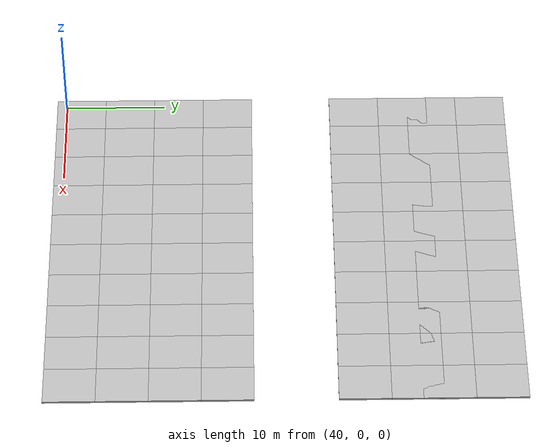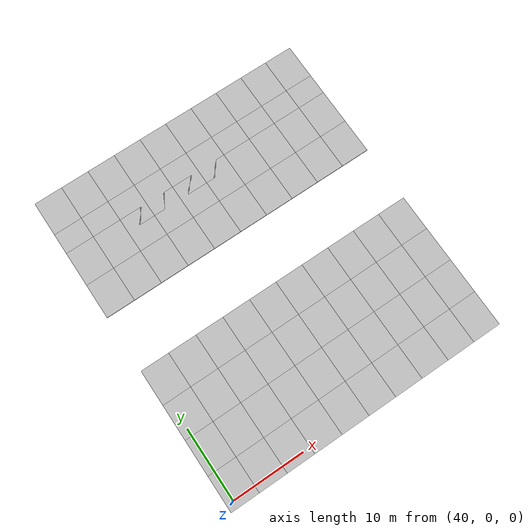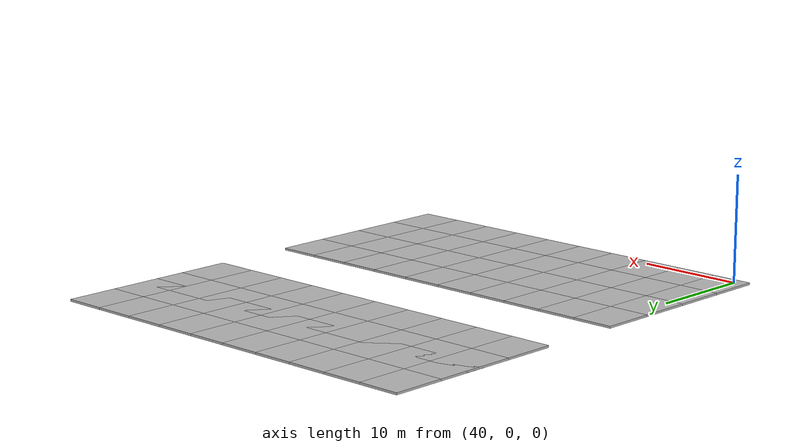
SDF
<sdf version="1.7">
 <world name="default">
  <model name="mud_layer_15">
   <static>1</static>
   <link name="link">
    <collision name="collision"><geometry><box><size>8 10 0.2</size></box></geometry></collision>
    <visual name="visual_1">
     <pose>-2 2.5 0 0 -0 0</pose>
     <cast_shadows>0</cast_shadows>
     <geometry><box><size>4 5 0.2</size></box></geometry>
     <material>
      <script>
       <uri>model://mud_box/materials/scripts</uri>
       <uri>model://mud_box/materials/textures</uri>
       <name>vrc/mud</name>
      </script>
     </material>
    </visual>
    <visual name="visual_2">
     <pose>2 2.5 0 0 -0 0</pose>
     <cast_shadows>0</cast_shadows>
     <geometry><box><size>4 5 0.2</size></box></geometry>
     <material>
      <script>
       <uri>model://mud_box/materials/scripts</uri>
       <uri>model://mud_box/materials/textures</uri>
       <name>vrc/mud</name>
      </script>
     </material>
    </visual>
    <visual name="visual_3">
     <pose>2 -2.5 0 0 -0 0</pose>
     <cast_shadows>0</cast_shadows>
     <geometry><box><size>4 5 0.2</size></box></geometry>
     <material>
      <script>
       <uri>model://mud_box/materials/scripts</uri>
       <uri>model://mud_box/materials/textures</uri>
       <name>vrc/mud</name>
      </script>
     </material>
    </visual>
    <visual name="visual_4">
     <pose>-2 -2.5 0 0 -0 0</pose>
     <cast_shadows>0</cast_shadows>
     <geometry><box><size>4 5 0.2</size></box></geometry>
     <material>
      <script>
       <uri>model://mud_box/materials/scripts</uri>
       <uri>model://mud_box/materials/textures</uri>
       <name>vrc/mud</name>
      </script>
     </material>
    </visual>
   </link>
   <pose>43 4 -0.1 0 -0 0</pose>
  </model>
  <model name="mud_layer_16">
   <static>1</static>
   <link name="link">
    <collision name="collision"><geometry><box><size>8 10 0.2</size></box></geometry></collision>
    <visual name="visual_1">
     <pose>-2 2.5 0 0 -0 0</pose>
     <cast_shadows>0</cast_shadows>
     <geometry><box><size>4 5 0.2</size></box></geometry>
     <material>
      <script>
       <uri>model://mud_box/materials/scripts</uri>
       <uri>model://mud_box/materials/textures</uri>
       <name>vrc/mud</name>
      </script>
     </material>
    </visual>
    <visual name="visual_2">
     <pose>2 2.5 0 0 -0 0</pose>
     <cast_shadows>0</cast_shadows>
     <geometry><box><size>4 5 0.2</size></box></geometry>
     <material>
      <script>
       <uri>model://mud_box/materials/scripts</uri>
       <uri>model://mud_box/materials/textures</uri>
       <name>vrc/mud</name>
      </script>
     </material>
    </visual>
    <visual name="visual_3">
     <pose>2 -2.5 0 0 -0 0</pose>
     <cast_shadows>0</cast_shadows>
     <geometry><box><size>4 5 0.2</size></box></geometry>
     <material>
      <script>
       <uri>model://mud_box/materials/scripts</uri>
       <uri>model://mud_box/materials/textures</uri>
       <name>vrc/mud</name>
      </script>
     </material>
    </visual>
    <visual name="visual_4">
     <pose>-2 -2.5 0 0 -0 0</pose>
     <cast_shadows>0</cast_shadows>
     <geometry><box><size>4 5 0.2</size></box></geometry>
     <material>
      <script>
       <uri>model://mud_box/materials/scripts</uri>
       <uri>model://mud_box/materials/textures</uri>
       <name>vrc/mud</name>
      </script>
     </material>
    </visual>
   </link>
   <pose>51 4 -0.1 0 -0 0</pose>
  </model>
  <model name="mud_layer_17">
   <static>1</static>
   <link name="link">
    <collision name="collision"><geometry><box><size>8 10 0.2</size></box></geometry></collision>
    <visual name="visual_1">
     <pose>-2 2.5 0 0 -0 0</pose>
     <cast_shadows>0</cast_shadows>
     <geometry><box><size>4 5 0.2</size></box></geometry>
     <material>
      <script>
       <uri>model://mud_box/materials/scripts</uri>
       <uri>model://mud_box/materials/textures</uri>
       <name>vrc/mud</name>
      </script>
     </material>
    </visual>
    <visual name="visual_2">
     <pose>2 2.5 0 0 -0 0</pose>
     <cast_shadows>0</cast_shadows>
     <geometry><box><size>4 5 0.2</size></box></geometry>
     <material>
      <script>
       <uri>model://mud_box/materials/scripts</uri>
       <uri>model://mud_box/materials/textures</uri>
       <name>vrc/mud</name>
      </script>
     </material>
    </visual>
    <visual name="visual_3">
     <pose>2 -2.5 0 0 -0 0</pose>
     <cast_shadows>0</cast_shadows>
     <geometry><box><size>4 5 0.2</size></box></geometry>
     <material>
      <script>
       <uri>model://mud_box/materials/scripts</uri>
       <uri>model://mud_box/materials/textures</uri>
       <name>vrc/mud</name>
      </script>
     </material>
    </visual>
    <visual name="visual_4">
     <pose>-2 -2.5 0 0 -0 0</pose>
     <cast_shadows>0</cast_shadows>
     <geometry><box><size>4 5 0.2</size></box></geometry>
     <material>
      <script>
       <uri>model://mud_box/materials/scripts</uri>
       <uri>model://mud_box/materials/textures</uri>
       <name>vrc/mud</name>
      </script>
     </material>
    </visual>
   </link>
   <pose>59 4 -0.1 0 -0 0</pose>
  </model>
  <model name="mud_layer_18">
   <static>1</static>
   <link name="link">
    <collision name="collision"><geometry><box><size>8 10 0.2</size></box></geometry></collision>
    <visual name="visual_1">
     <pose>-2 2.5 0 0 -0 0</pose>
     <cast_shadows>0</cast_shadows>
     <geometry><box><size>4 5 0.2</size></box></geometry>
     <material>
      <script>
       <uri>model://mud_box/materials/scripts</uri>
       <uri>model://mud_box/materials/textures</uri>
       <name>vrc/mud</name>
      </script>
     </material>
    </visual>
    <visual name="visual_2">
     <pose>2 2.5 0 0 -0 0</pose>
     <cast_shadows>0</cast_shadows>
     <geometry><box><size>4 5 0.2</size></box></geometry>
     <material>
      <script>
       <uri>model://mud_box/materials/scripts</uri>
       <uri>model://mud_box/materials/textures</uri>
       <name>vrc/mud</name>
      </script>
     </material>
    </visual>
    <visual name="visual_3">
     <pose>2 -2.5 0 0 -0 0</pose>
     <cast_shadows>0</cast_shadows>
     <geometry><box><size>4 5 0.2</size></box></geometry>
     <material>
      <script>
       <uri>model://mud_box/materials/scripts</uri>
       <uri>model://mud_box/materials/textures</uri>
       <name>vrc/mud</name>
      </script>
     </material>
    </visual>
    <visual name="visual_4">
     <pose>-2 -2.5 0 0 -0 0</pose>
     <cast_shadows>0</cast_shadows>
     <geometry><box><size>4 5 0.2</size></box></geometry>
     <material>
      <script>
       <uri>model://mud_box/materials/scripts</uri>
       <uri>model://mud_box/materials/textures</uri>
       <name>vrc/mud</name>
      </script>
     </material>
    </visual>
   </link>
   <pose>67 4 -0.1 0 -0 0</pose>
  </model>
  <model name="mud_layer_19">
   <static>1</static>
   <link name="link">
    <collision name="collision"><geometry><box><size>8 10 0.2</size></box></geometry></collision>
    <visual name="visual_1">
     <pose>-2 2.5 0 0 -0 0</pose>
     <cast_shadows>0</cast_shadows>
     <geometry><box><size>4 5 0.2</size></box></geometry>
     <material>
      <script>
       <uri>model://mud_box/materials/scripts</uri>
       <uri>model://mud_box/materials/textures</uri>
       <name>vrc/mud</name>
      </script>
     </material>
    </visual>
    <visual name="visual_2">
     <pose>2 2.5 0 0 -0 0</pose>
     <cast_shadows>0</cast_shadows>
     <geometry><box><size>4 5 0.2</size></box></geometry>
     <material>
      <script>
       <uri>model://mud_box/materials/scripts</uri>
       <uri>model://mud_box/materials/textures</uri>
       <name>vrc/mud</name>
      </script>
     </material>
    </visual>
    <visual name="visual_3">
     <pose>2 -2.5 0 0 -0 0</pose>
     <cast_shadows>0</cast_shadows>
     <geometry><box><size>4 5 0.2</size></box></geometry>
     <material>
      <script>
       <uri>model://mud_box/materials/scripts</uri>
       <uri>model://mud_box/materials/textures</uri>
       <name>vrc/mud</name>
      </script>
     </material>
    </visual>
    <visual name="visual_4">
     <pose>-2 -2.5 0 0 -0 0</pose>
     <cast_shadows>0</cast_shadows>
     <geometry><box><size>4 5 0.2</size></box></geometry>
     <material>
      <script>
       <uri>model://mud_box/materials/scripts</uri>
       <uri>model://mud_box/materials/textures</uri>
       <name>vrc/mud</name>
      </script>
     </material>
    </visual>
   </link>
   <pose>75 4 -0.1 0 -0 0</pose>
  </model>
  <model name="mud_layer_25">
   <static>1</static>
   <link name="link">
    <collision name="collision"><geometry><box><size>8 10 0.2</size></box></geometry></collision>
    <visual name="visual_1">
     <pose>-2 2.5 0 0 -0 0</pose>
     <cast_shadows>0</cast_shadows>
     <geometry><box><size>4 5 0.2</size></box></geometry>
     <material>
      <script>
       <uri>model://mud_box/materials/scripts</uri>
       <uri>model://mud_box/materials/textures</uri>
       <name>vrc/mud</name>
      </script>
     </material>
    </visual>
    <visual name="visual_2">
     <pose>2 2.5 0 0 -0 0</pose>
     <cast_shadows>0</cast_shadows>
     <geometry><box><size>4 5 0.2</size></box></geometry>
     <material>
      <script>
       <uri>model://mud_box/materials/scripts</uri>
       <uri>model://mud_box/materials/textures</uri>
       <name>vrc/mud</name>
      </script>
     </material>
    </visual>
    <visual name="visual_3">
     <pose>2 -2.5 0 0 -0 0</pose>
     <cast_shadows>0</cast_shadows>
     <geometry><box><size>4 5 0.2</size></box></geometry>
     <material>
      <script>
       <uri>model://mud_box/materials/scripts</uri>
       <uri>model://mud_box/materials/textures</uri>
       <name>vrc/mud</name>
      </script>
     </material>
    </visual>
    <visual name="visual_4">
     <pose>-2 -2.5 0 0 -0 0</pose>
     <cast_shadows>0</cast_shadows>
     <geometry><box><size>4 5 0.2</size></box></geometry>
     <material>
      <script>
       <uri>model://mud_box/materials/scripts</uri>
       <uri>model://mud_box/materials/textures</uri>
       <name>vrc/mud</name>
      </script>
     </material>
    </visual>
   </link>
   <pose>43 14 -0.1 0 -0 0</pose>
  </model>
  <model name="mud_layer_26">
   <static>1</static>
   <link name="link">
    <collision name="collision"><geometry><box><size>8 10 0.2</size></box></geometry></collision>
    <visual name="visual_1">
     <pose>-2 2.5 0 0 -0 0</pose>
     <cast_shadows>0</cast_shadows>
     <geometry><box><size>4 5 0.2</size></box></geometry>
     <material>
      <script>
       <uri>model://mud_box/materials/scripts</uri>
       <uri>model://mud_box/materials/textures</uri>
       <name>vrc/mud</name>
      </script>
     </material>
    </visual>
    <visual name="visual_2">
     <pose>2 2.5 0 0 -0 0</pose>
     <cast_shadows>0</cast_shadows>
     <geometry><box><size>4 5 0.2</size></box></geometry>
     <material>
      <script>
       <uri>model://mud_box/materials/scripts</uri>
       <uri>model://mud_box/materials/textures</uri>
       <name>vrc/mud</name>
      </script>
     </material>
    </visual>
    <visual name="visual_3">
     <pose>2 -2.5 0 0 -0 0</pose>
     <cast_shadows>0</cast_shadows>
     <geometry><box><size>4 5 0.2</size></box></geometry>
     <material>
      <script>
       <uri>model://mud_box/materials/scripts</uri>
       <uri>model://mud_box/materials/textures</uri>
       <name>vrc/mud</name>
      </script>
     </material>
    </visual>
    <visual name="visual_4">
     <pose>-2 -2.5 0 0 -0 0</pose>
     <cast_shadows>0</cast_shadows>
     <geometry><box><size>4 5 0.2</size></box></geometry>
     <material>
      <script>
       <uri>model://mud_box/materials/scripts</uri>
       <uri>model://mud_box/materials/textures</uri>
       <name>vrc/mud</name>
      </script>
     </material>
    </visual>
   </link>
   <pose>51 14 -0.1 0 -0 0</pose>
  </model>
  <model name="mud_layer_27">
   <static>1</static>
   <link name="link">
    <collision name="collision"><geometry><box><size>8 10 0.2</size></box></geometry></collision>
    <visual name="visual_1">
     <pose>-2 2.5 0 0 -0 0</pose>
     <cast_shadows>0</cast_shadows>
     <geometry><box><size>4 5 0.2</size></box></geometry>
     <material>
      <script>
       <uri>model://mud_box/materials/scripts</uri>
       <uri>model://mud_box/materials/textures</uri>
       <name>vrc/mud</name>
      </script>
     </material>
    </visual>
    <visual name="visual_2">
     <pose>2 2.5 0 0 -0 0</pose>
     <cast_shadows>0</cast_shadows>
     <geometry><box><size>4 5 0.2</size></box></geometry>
     <material>
      <script>
       <uri>model://mud_box/materials/scripts</uri>
       <uri>model://mud_box/materials/textures</uri>
       <name>vrc/mud</name>
      </script>
     </material>
    </visual>
    <visual name="visual_3">
     <pose>2 -2.5 0 0 -0 0</pose>
     <cast_shadows>0</cast_shadows>
     <geometry><box><size>4 5 0.2</size></box></geometry>
     <material>
      <script>
       <uri>model://mud_box/materials/scripts</uri>
       <uri>model://mud_box/materials/textures</uri>
       <name>vrc/mud</name>
      </script>
     </material>
    </visual>
    <visual name="visual_4">
     <pose>-2 -2.5 0 0 -0 0</pose>
     <cast_shadows>0</cast_shadows>
     <geometry><box><size>4 5 0.2</size></box></geometry>
     <material>
      <script>
       <uri>model://mud_box/materials/scripts</uri>
       <uri>model://mud_box/materials/textures</uri>
       <name>vrc/mud</name>
      </script>
     </material>
    </visual>
   </link>
   <pose>59 14 -0.1 0 -0 0</pose>
  </model>
  <model name="mud_layer_28">
   <static>1</static>
   <link name="link">
    <collision name="collision"><geometry><box><size>8 10 0.2</size></box></geometry></collision>
    <visual name="visual_1">
     <pose>-2 2.5 0 0 -0 0</pose>
     <cast_shadows>0</cast_shadows>
     <geometry><box><size>4 5 0.2</size></box></geometry>
     <material>
      <script>
       <uri>model://mud_box/materials/scripts</uri>
       <uri>model://mud_box/materials/textures</uri>
       <name>vrc/mud</name>
      </script>
     </material>
    </visual>
    <visual name="visual_2">
     <pose>2 2.5 0 0 -0 0</pose>
     <cast_shadows>0</cast_shadows>
     <geometry><box><size>4 5 0.2</size></box></geometry>
     <material>
      <script>
       <uri>model://mud_box/materials/scripts</uri>
       <uri>model://mud_box/materials/textures</uri>
       <name>vrc/mud</name>
      </script>
     </material>
    </visual>
    <visual name="visual_3">
     <pose>2 -2.5 0 0 -0 0</pose>
     <cast_shadows>0</cast_shadows>
     <geometry><box><size>4 5 0.2</size></box></geometry>
     <material>
      <script>
       <uri>model://mud_box/materials/scripts</uri>
       <uri>model://mud_box/materials/textures</uri>
       <name>vrc/mud</name>
      </script>
     </material>
    </visual>
    <visual name="visual_4">
     <pose>-2 -2.5 0 0 -0 0</pose>
     <cast_shadows>0</cast_shadows>
     <geometry><box><size>4 5 0.2</size></box></geometry>
     <material>
      <script>
       <uri>model://mud_box/materials/scripts</uri>
       <uri>model://mud_box/materials/textures</uri>
       <name>vrc/mud</name>
      </script>
     </material>
    </visual>
   </link>
   <pose>67 14 -0.1 0 -0 0</pose>
  </model>
  <model name="mud_layer_29">
   <static>1</static>
   <link name="link">
    <collision name="collision"><geometry><box><size>8 10 0.2</size></box></geometry></collision>
    <visual name="visual_1">
     <pose>-2 2.5 0 0 -0 0</pose>
     <cast_shadows>0</cast_shadows>
     <geometry><box><size>4 5 0.2</size></box></geometry>
     <material>
      <script>
       <uri>model://mud_box/materials/scripts</uri>
       <uri>model://mud_box/materials/textures</uri>
       <name>vrc/mud</name>
      </script>
     </material>
    </visual>
    <visual name="visual_2">
     <pose>2 2.5 0 0 -0 0</pose>
     <cast_shadows>0</cast_shadows>
     <geometry><box><size>4 5 0.2</size></box></geometry>
     <material>
      <script>
       <uri>model://mud_box/materials/scripts</uri>
       <uri>model://mud_box/materials/textures</uri>
       <name>vrc/mud</name>
      </script>
     </material>
    </visual>
    <visual name="visual_3">
     <pose>2 -2.5 0 0 -0 0</pose>
     <cast_shadows>0</cast_shadows>
     <geometry><box><size>4 5 0.2</size></box></geometry>
     <material>
      <script>
       <uri>model://mud_box/materials/scripts</uri>
       <uri>model://mud_box/materials/textures</uri>
       <name>vrc/mud</name>
      </script>
     </material>
    </visual>
    <visual name="visual_4">
     <pose>-2 -2.5 0 0 -0 0</pose>
     <cast_shadows>0</cast_shadows>
     <geometry><box><size>4 5 0.2</size></box></geometry>
     <material>
      <script>
       <uri>model://mud_box/materials/scripts</uri>
       <uri>model://mud_box/materials/textures</uri>
       <name>vrc/mud</name>
      </script>
     </material>
    </visual>
   </link>
   <pose>75 14 -0.1 0 -0 0</pose>
  </model>
  <model name="mud_layer_35">
   <static>1</static>
   <link name="link">
    <collision name="collision"><geometry><box><size>8 10 0.2</size></box></geometry></collision>
    <visual name="visual_1">
     <pose>-2 2.5 0 0 -0 0</pose>
     <cast_shadows>0</cast_shadows>
     <geometry><box><size>4 5 0.2</size></box></geometry>
     <material>
      <script>
       <uri>model://mud_box/materials/scripts</uri>
       <uri>model://mud_box/materials/textures</uri>
       <name>vrc/mud</name>
      </script>
     </material>
    </visual>
    <visual name="visual_2">
     <pose>2 2.5 0 0 -0 0</pose>
     <cast_shadows>0</cast_shadows>
     <geometry><box><size>4 5 0.2</size></box></geometry>
     <material>
      <script>
       <uri>model://mud_box/materials/scripts</uri>
       <uri>model://mud_box/materials/textures</uri>
       <name>vrc/mud</name>
      </script>
     </material>
    </visual>
    <visual name="visual_3">
     <pose>2 -2.5 0 0 -0 0</pose>
     <cast_shadows>0</cast_shadows>
     <geometry><box><size>4 5 0.2</size></box></geometry>
     <material>
      <script>
       <uri>model://mud_box/materials/scripts</uri>
       <uri>model://mud_box/materials/textures</uri>
       <name>vrc/mud</name>
      </script>
     </material>
    </visual>
    <visual name="visual_4">
     <pose>-2 -2.5 0 0 -0 0</pose>
     <cast_shadows>0</cast_shadows>
     <geometry><box><size>4 5 0.2</size></box></geometry>
     <material>
      <script>
       <uri>model://mud_box/materials/scripts</uri>
       <uri>model://mud_box/materials/textures</uri>
       <name>vrc/mud</name>
      </script>
     </material>
    </visual>
   </link>
   <pose>43 32 -0.1 0 -0 0</pose>
  </model>
  <model name="mud_layer_36">
   <static>1</static>
   <link name="link">
    <collision name="collision"><geometry><box><size>8 10 0.2</size></box></geometry></collision>
    <visual name="visual_1">
     <pose>-2 2.5 0 0 -0 0</pose>
     <cast_shadows>0</cast_shadows>
     <geometry><box><size>4 5 0.2</size></box></geometry>
     <material>
      <script>
       <uri>model://mud_box/materials/scripts</uri>
       <uri>model://mud_box/materials/textures</uri>
       <name>vrc/mud</name>
      </script>
     </material>
    </visual>
    <visual name="visual_2">
     <pose>2 2.5 0 0 -0 0</pose>
     <cast_shadows>0</cast_shadows>
     <geometry><box><size>4 5 0.2</size></box></geometry>
     <material>
      <script>
       <uri>model://mud_box/materials/scripts</uri>
       <uri>model://mud_box/materials/textures</uri>
       <name>vrc/mud</name>
      </script>
     </material>
    </visual>
    <visual name="visual_3">
     <pose>2 -2.5 0 0 -0 0</pose>
     <cast_shadows>0</cast_shadows>
     <geometry><box><size>4 5 0.2</size></box></geometry>
     <material>
      <script>
       <uri>model://mud_box/materials/scripts</uri>
       <uri>model://mud_box/materials/textures</uri>
       <name>vrc/mud</name>
      </script>
     </material>
    </visual>
    <visual name="visual_4">
     <pose>-2 -2.5 0 0 -0 0</pose>
     <cast_shadows>0</cast_shadows>
     <geometry><box><size>4 5 0.2</size></box></geometry>
     <material>
      <script>
       <uri>model://mud_box/materials/scripts</uri>
       <uri>model://mud_box/materials/textures</uri>
       <name>vrc/mud</name>
      </script>
     </material>
    </visual>
   </link>
   <pose>51 32 -0.1 0 -0 0</pose>
  </model>
  <model name="mud_layer_37">
   <static>1</static>
   <link name="link">
    <collision name="collision"><geometry><box><size>8 10 0.2</size></box></geometry></collision>
    <visual name="visual_1">
     <pose>-2 2.5 0 0 -0 0</pose>
     <cast_shadows>0</cast_shadows>
     <geometry><box><size>4 5 0.2</size></box></geometry>
     <material>
      <script>
       <uri>model://mud_box/materials/scripts</uri>
       <uri>model://mud_box/materials/textures</uri>
       <name>vrc/mud</name>
      </script>
     </material>
    </visual>
    <visual name="visual_2">
     <pose>2 2.5 0 0 -0 0</pose>
     <cast_shadows>0</cast_shadows>
     <geometry><box><size>4 5 0.2</size></box></geometry>
     <material>
      <script>
       <uri>model://mud_box/materials/scripts</uri>
       <uri>model://mud_box/materials/textures</uri>
       <name>vrc/mud</name>
      </script>
     </material>
    </visual>
    <visual name="visual_3">
     <pose>2 -2.5 0 0 -0 0</pose>
     <cast_shadows>0</cast_shadows>
     <geometry><box><size>4 5 0.2</size></box></geometry>
     <material>
      <script>
       <uri>model://mud_box/materials/scripts</uri>
       <uri>model://mud_box/materials/textures</uri>
       <name>vrc/mud</name>
      </script>
     </material>
    </visual>
    <visual name="visual_4">
     <pose>-2 -2.5 0 0 -0 0</pose>
     <cast_shadows>0</cast_shadows>
     <geometry><box><size>4 5 0.2</size></box></geometry>
     <material>
      <script>
       <uri>model://mud_box/materials/scripts</uri>
       <uri>model://mud_box/materials/textures</uri>
       <name>vrc/mud</name>
      </script>
     </material>
    </visual>
   </link>
   <pose>59 32 -0.1 0 -0 0</pose>
  </model>
  <model name="mud_layer_38">
   <static>1</static>
   <link name="link">
    <collision name="collision"><geometry><box><size>8 10 0.2</size></box></geometry></collision>
    <visual name="visual_1">
     <pose>-2 2.5 0 0 -0 0</pose>
     <cast_shadows>0</cast_shadows>
     <geometry><box><size>4 5 0.2</size></box></geometry>
     <material>
      <script>
       <uri>model://mud_box/materials/scripts</uri>
       <uri>model://mud_box/materials/textures</uri>
       <name>vrc/mud</name>
      </script>
     </material>
    </visual>
    <visual name="visual_2">
     <pose>2 2.5 0 0 -0 0</pose>
     <cast_shadows>0</cast_shadows>
     <geometry><box><size>4 5 0.2</size></box></geometry>
     <material>
      <script>
       <uri>model://mud_box/materials/scripts</uri>
       <uri>model://mud_box/materials/textures</uri>
       <name>vrc/mud</name>
      </script>
     </material>
    </visual>
    <visual name="visual_3">
     <pose>2 -2.5 0 0 -0 0</pose>
     <cast_shadows>0</cast_shadows>
     <geometry><box><size>4 5 0.2</size></box></geometry>
     <material>
      <script>
       <uri>model://mud_box/materials/scripts</uri>
       <uri>model://mud_box/materials/textures</uri>
       <name>vrc/mud</name>
      </script>
     </material>
    </visual>
    <visual name="visual_4">
     <pose>-2 -2.5 0 0 -0 0</pose>
     <cast_shadows>0</cast_shadows>
     <geometry><box><size>4 5 0.2</size></box></geometry>
     <material>
      <script>
       <uri>model://mud_box/materials/scripts</uri>
       <uri>model://mud_box/materials/textures</uri>
       <name>vrc/mud</name>
      </script>
     </material>
    </visual>
   </link>
   <pose>67 32 -0.1 0 -0 0</pose>
  </model>
  <model name="mud_layer_39">
   <static>1</static>
   <link name="link">
    <collision name="collision"><geometry><box><size>8 10 0.2</size></box></geometry></collision>
    <visual name="visual_1">
     <pose>-2 2.5 0 0 -0 0</pose>
     <cast_shadows>0</cast_shadows>
     <geometry><box><size>4 5 0.2</size></box></geometry>
     <material>
      <script>
       <uri>model://mud_box/materials/scripts</uri>
       <uri>model://mud_box/materials/textures</uri>
       <name>vrc/mud</name>
      </script>
     </material>
    </visual>
    <visual name="visual_2">
     <pose>2 2.5 0 0 -0 0</pose>
     <cast_shadows>0</cast_shadows>
     <geometry><box><size>4 5 0.2</size></box></geometry>
     <material>
      <script>
       <uri>model://mud_box/materials/scripts</uri>
       <uri>model://mud_box/materials/textures</uri>
       <name>vrc/mud</name>
      </script>
     </material>
    </visual>
    <visual name="visual_3">
     <pose>2 -2.5 0 0 -0 0</pose>
     <cast_shadows>0</cast_shadows>
     <geometry><box><size>4 5 0.2</size></box></geometry>
     <material>
      <script>
       <uri>model://mud_box/materials/scripts</uri>
       <uri>model://mud_box/materials/textures</uri>
       <name>vrc/mud</name>
      </script>
     </material>
    </visual>
    <visual name="visual_4">
     <pose>-2 -2.5 0 0 -0 0</pose>
     <cast_shadows>0</cast_shadows>
     <geometry><box><size>4 5 0.2</size></box></geometry>
     <material>
      <script>
       <uri>model://mud_box/materials/scripts</uri>
       <uri>model://mud_box/materials/textures</uri>
       <name>vrc/mud</name>
      </script>
     </material>
    </visual>
   </link>
   <pose>75 32 -0.1 0 -0 0</pose>
  </model>
  <model name="mud_layer_45">
   <static>1</static>
   <link name="link">
    <collision name="collision"><geometry><box><size>8 10 0.2</size></box></geometry></collision>
    <visual name="visual_1">
     <pose>-2 2.5 0 0 -0 0</pose>
     <cast_shadows>0</cast_shadows>
     <geometry><box><size>4 5 0.2</size></box></geometry>
     <material>
      <script>
       <uri>model://mud_box/materials/scripts</uri>
       <uri>model://mud_box/materials/textures</uri>
       <name>vrc/mud</name>
      </script>
     </material>
    </visual>
    <visual name="visual_2">
     <pose>2 2.5 0 0 -0 0</pose>
     <cast_shadows>0</cast_shadows>
     <geometry><box><size>4 5 0.2</size></box></geometry>
     <material>
      <script>
       <uri>model://mud_box/materials/scripts</uri>
       <uri>model://mud_box/materials/textures</uri>
       <name>vrc/mud</name>
      </script>
     </material>
    </visual>
    <visual name="visual_3">
     <pose>2 -2.5 0 0 -0 0</pose>
     <cast_shadows>0</cast_shadows>
     <geometry><box><size>4 5 0.2</size></box></geometry>
     <material>
      <script>
       <uri>model://mud_box/materials/scripts</uri>
       <uri>model://mud_box/materials/textures</uri>
       <name>vrc/mud</name>
      </script>
     </material>
    </visual>
    <visual name="visual_4">
     <pose>-2 -2.5 0 0 -0 0</pose>
     <cast_shadows>0</cast_shadows>
     <geometry><box><size>4 5 0.2</size></box></geometry>
     <material>
      <script>
       <uri>model://mud_box/materials/scripts</uri>
       <uri>model://mud_box/materials/textures</uri>
       <name>vrc/mud</name>
      </script>
     </material>
    </visual>
   </link>
   <pose>43 40 -0.1 0 -0 0</pose>
  </model>
  <model name="mud_layer_46">
   <static>1</static>
   <link name="link">
    <collision name="collision"><geometry><box><size>8 10 0.2</size></box></geometry></collision>
    <visual name="visual_1">
     <pose>-2 2.5 0 0 -0 0</pose>
     <cast_shadows>0</cast_shadows>
     <geometry><box><size>4 5 0.2</size></box></geometry>
     <material>
      <script>
       <uri>model://mud_box/materials/scripts</uri>
       <uri>model://mud_box/materials/textures</uri>
       <name>vrc/mud</name>
      </script>
     </material>
    </visual>
    <visual name="visual_2">
     <pose>2 2.5 0 0 -0 0</pose>
     <cast_shadows>0</cast_shadows>
     <geometry><box><size>4 5 0.2</size></box></geometry>
     <material>
      <script>
       <uri>model://mud_box/materials/scripts</uri>
       <uri>model://mud_box/materials/textures</uri>
       <name>vrc/mud</name>
      </script>
     </material>
    </visual>
    <visual name="visual_3">
     <pose>2 -2.5 0 0 -0 0</pose>
     <cast_shadows>0</cast_shadows>
     <geometry><box><size>4 5 0.2</size></box></geometry>
     <material>
      <script>
       <uri>model://mud_box/materials/scripts</uri>
       <uri>model://mud_box/materials/textures</uri>
       <name>vrc/mud</name>
      </script>
     </material>
    </visual>
    <visual name="visual_4">
     <pose>-2 -2.5 0 0 -0 0</pose>
     <cast_shadows>0</cast_shadows>
     <geometry><box><size>4 5 0.2</size></box></geometry>
     <material>
      <script>
       <uri>model://mud_box/materials/scripts</uri>
       <uri>model://mud_box/materials/textures</uri>
       <name>vrc/mud</name>
      </script>
     </material>
    </visual>
   </link>
   <pose>51 40 -0.1 0 -0 0</pose>
  </model>
  <model name="mud_layer_47">
   <static>1</static>
   <link name="link">
    <collision name="collision"><geometry><box><size>8 10 0.2</size></box></geometry></collision>
    <visual name="visual_1">
     <pose>-2 2.5 0 0 -0 0</pose>
     <cast_shadows>0</cast_shadows>
     <geometry><box><size>4 5 0.2</size></box></geometry>
     <material>
      <script>
       <uri>model://mud_box/materials/scripts</uri>
       <uri>model://mud_box/materials/textures</uri>
       <name>vrc/mud</name>
      </script>
     </material>
    </visual>
    <visual name="visual_2">
     <pose>2 2.5 0 0 -0 0</pose>
     <cast_shadows>0</cast_shadows>
     <geometry><box><size>4 5 0.2</size></box></geometry>
     <material>
      <script>
       <uri>model://mud_box/materials/scripts</uri>
       <uri>model://mud_box/materials/textures</uri>
       <name>vrc/mud</name>
      </script>
     </material>
    </visual>
    <visual name="visual_3">
     <pose>2 -2.5 0 0 -0 0</pose>
     <cast_shadows>0</cast_shadows>
     <geometry><box><size>4 5 0.2</size></box></geometry>
     <material>
      <script>
       <uri>model://mud_box/materials/scripts</uri>
       <uri>model://mud_box/materials/textures</uri>
       <name>vrc/mud</name>
      </script>
     </material>
    </visual>
    <visual name="visual_4">
     <pose>-2 -2.5 0 0 -0 0</pose>
     <cast_shadows>0</cast_shadows>
     <geometry><box><size>4 5 0.2</size></box></geometry>
     <material>
      <script>
       <uri>model://mud_box/materials/scripts</uri>
       <uri>model://mud_box/materials/textures</uri>
       <name>vrc/mud</name>
      </script>
     </material>
    </visual>
   </link>
   <pose>59 40 -0.1 0 -0 0</pose>
  </model>
  <model name="mud_layer_48">
   <static>1</static>
   <link name="link">
    <collision name="collision"><geometry><box><size>8 10 0.2</size></box></geometry></collision>
    <visual name="visual_1">
     <pose>-2 2.5 0 0 -0 0</pose>
     <cast_shadows>0</cast_shadows>
     <geometry><box><size>4 5 0.2</size></box></geometry>
     <material>
      <script>
       <uri>model://mud_box/materials/scripts</uri>
       <uri>model://mud_box/materials/textures</uri>
       <name>vrc/mud</name>
      </script>
     </material>
    </visual>
    <visual name="visual_2">
     <pose>2 2.5 0 0 -0 0</pose>
     <cast_shadows>0</cast_shadows>
     <geometry><box><size>4 5 0.2</size></box></geometry>
     <material>
      <script>
       <uri>model://mud_box/materials/scripts</uri>
       <uri>model://mud_box/materials/textures</uri>
       <name>vrc/mud</name>
      </script>
     </material>
    </visual>
    <visual name="visual_3">
     <pose>2 -2.5 0 0 -0 0</pose>
     <cast_shadows>0</cast_shadows>
     <geometry><box><size>4 5 0.2</size></box></geometry>
     <material>
      <script>
       <uri>model://mud_box/materials/scripts</uri>
       <uri>model://mud_box/materials/textures</uri>
       <name>vrc/mud</name>
      </script>
     </material>
    </visual>
    <visual name="visual_4">
     <pose>-2 -2.5 0 0 -0 0</pose>
     <cast_shadows>0</cast_shadows>
     <geometry><box><size>4 5 0.2</size></box></geometry>
     <material>
      <script>
       <uri>model://mud_box/materials/scripts</uri>
       <uri>model://mud_box/materials/textures</uri>
       <name>vrc/mud</name>
      </script>
     </material>
    </visual>
   </link>
   <pose>67 40 -0.1 0 -0 0</pose>
  </model>
  <model name="mud_layer_49">
   <static>1</static>
   <link name="link">
    <collision name="collision"><geometry><box><size>8 10 0.2</size></box></geometry></collision>
    <visual name="visual_1">
     <pose>-2 2.5 0 0 -0 0</pose>
     <cast_shadows>0</cast_shadows>
     <geometry><box><size>4 5 0.2</size></box></geometry>
     <material>
      <script>
       <uri>model://mud_box/materials/scripts</uri>
       <uri>model://mud_box/materials/textures</uri>
       <name>vrc/mud</name>
      </script>
     </material>
    </visual>
    <visual name="visual_2">
     <pose>2 2.5 0 0 -0 0</pose>
     <cast_shadows>0</cast_shadows>
     <geometry><box><size>4 5 0.2</size></box></geometry>
     <material>
      <script>
       <uri>model://mud_box/materials/scripts</uri>
       <uri>model://mud_box/materials/textures</uri>
       <name>vrc/mud</name>
      </script>
     </material>
    </visual>
    <visual name="visual_3">
     <pose>2 -2.5 0 0 -0 0</pose>
     <cast_shadows>0</cast_shadows>
     <geometry><box><size>4 5 0.2</size></box></geometry>
     <material>
      <script>
       <uri>model://mud_box/materials/scripts</uri>
       <uri>model://mud_box/materials/textures</uri>
       <name>vrc/mud</name>
      </script>
     </material>
    </visual>
    <visual name="visual_4">
     <pose>-2 -2.5 0 0 -0 0</pose>
     <cast_shadows>0</cast_shadows>
     <geometry><box><size>4 5 0.2</size></box></geometry>
     <material>
      <script>
       <uri>model://mud_box/materials/scripts</uri>
       <uri>model://mud_box/materials/textures</uri>
       <name>vrc/mud</name>
      </script>
     </material>
    </visual>
   </link>
   <pose>75 40 -0.1 0 -0 0</pose>
  </model>
 </world>
</sdf>
